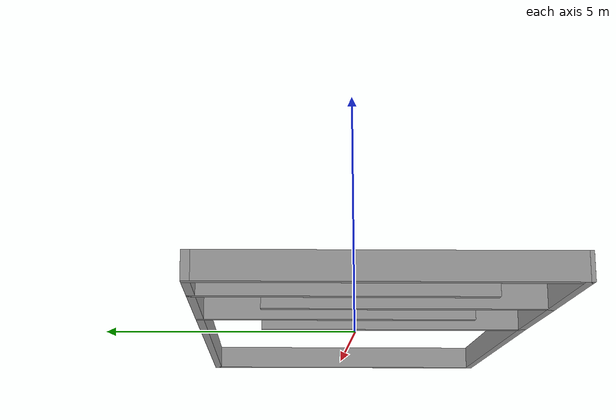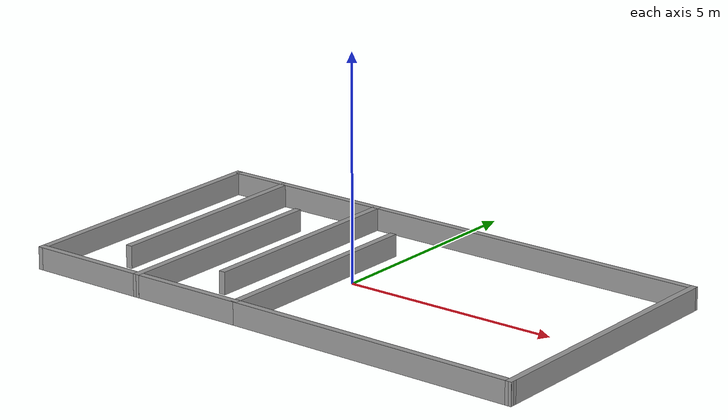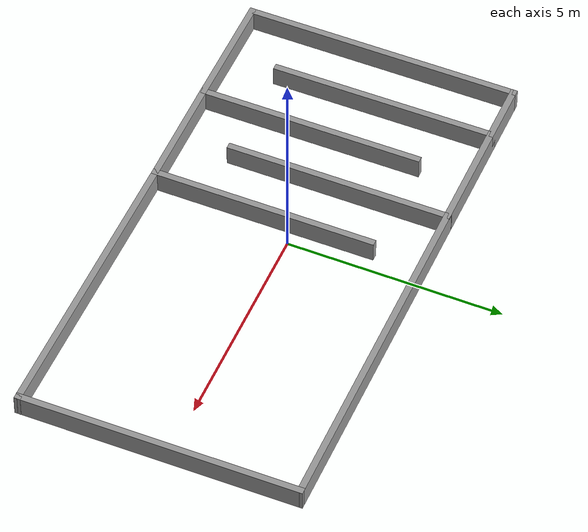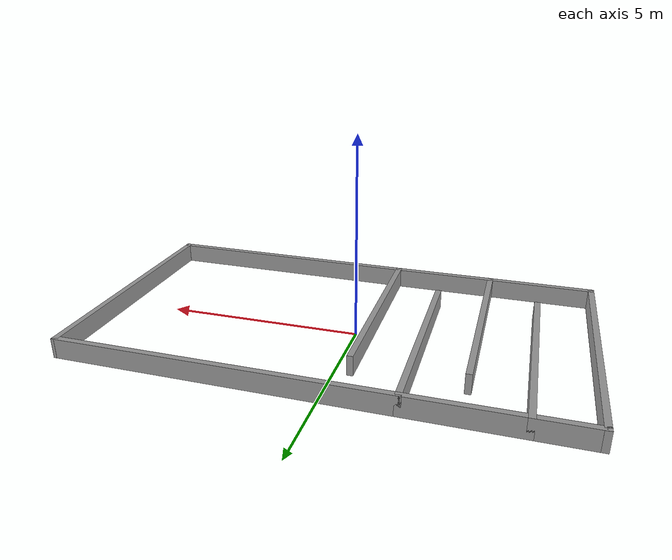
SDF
<?xml version='1.0'?>
<sdf version='1.7'>
  <model name='zigzag_limo'>
    <pose>0.405148 -0.1645 0 0 -0 0</pose>
    <link name='Wall_11'>
      <collision name='Wall_11_Collision'>
        <geometry>
          <box>
            <size>5.25 0.15 0.5</size>
          </box>
        </geometry>
        <pose>0 0 0.25 0 -0 0</pose>
      </collision>
      <visual name='Wall_11_Visual'>
        <pose>0 0 0.25 0 -0 0</pose>
        <geometry>
          <box>
            <size>5.25 0.15 0.5</size>
          </box>
        </geometry>
        <material>
          <script>
            <uri>file://media/materials/scripts/gazebo.material</uri>
            <name>Gazebo/Grey</name>
          </script>
          <ambient>1 1 1 1</ambient>
        </material>
        <meta>
          <layer>0</layer>
        </meta>
      </visual>
      <pose>-3.38515 -0.5795 0 0 -0 1.5708</pose>
    </link>
    <link name='Wall_14'>
      <collision name='Wall_14_Collision'>
        <geometry>
          <box>
            <size>2.72786 0.15 0.5</size>
          </box>
        </geometry>
        <pose>0 0 0.25 0 -0 0</pose>
      </collision>
      <visual name='Wall_14_Visual'>
        <pose>0 0 0.25 0 -0 0</pose>
        <geometry>
          <box>
            <size>2.72786 0.15 0.5</size>
          </box>
        </geometry>
        <material>
          <script>
            <uri>file://media/materials/scripts/gazebo.material</uri>
            <name>Gazebo/Grey</name>
          </script>
          <ambient>1 1 1 1</ambient>
        </material>
        <meta>
          <layer>0</layer>
        </meta>
      </visual>
      <pose>-3.40465 3.1925 0 0 -0 0</pose>
    </link>
    <link name='Wall_20'>
      <collision name='Wall_20_Collision'>
        <geometry>
          <box>
            <size>5.25 0.15 0.5</size>
          </box>
        </geometry>
        <pose>0 0 0.25 0 -0 0</pose>
      </collision>
      <visual name='Wall_20_Visual'>
        <pose>0 0 0.25 0 -0 0</pose>
        <geometry>
          <box>
            <size>5.25 0.15 0.5</size>
          </box>
        </geometry>
        <material>
          <script>
            <uri>file://media/materials/scripts/gazebo.material</uri>
            <name>Gazebo/Grey</name>
          </script>
          <ambient>1 1 1 1</ambient>
        </material>
        <meta>
          <layer>0</layer>
        </meta>
      </visual>
      <pose>-2.11615 0.6425 0 0 -0 -1.5708</pose>
    </link>
    <link name='Wall_22'>
      <collision name='Wall_22_Collision'>
        <geometry>
          <box>
            <size>2.75 0.15 0.5</size>
          </box>
        </geometry>
        <pose>0 0 0.25 0 -0 0</pose>
      </collision>
      <visual name='Wall_22_Visual'>
        <pose>0 0 0.25 0 -0 0</pose>
        <geometry>
          <box>
            <size>2.75 0.15 0.5</size>
          </box>
        </geometry>
        <material>
          <script>
            <uri>file://media/materials/scripts/gazebo.material</uri>
            <name>Gazebo/Grey</name>
          </script>
          <ambient>1 1 1 1</ambient>
        </material>
        <meta>
          <layer>0</layer>
        </meta>
      </visual>
      <pose>-2.08515 -3.1295 0 0 -0 0</pose>
    </link>
    <link name='Wall_23'>
      <collision name='Wall_23_Collision'>
        <geometry>
          <box>
            <size>5.25 0.15 0.5</size>
          </box>
        </geometry>
        <pose>0 0 0.25 0 -0 0</pose>
      </collision>
      <visual name='Wall_23_Visual'>
        <pose>0 0 0.25 0 -0 0</pose>
        <geometry>
          <box>
            <size>5.25 0.15 0.5</size>
          </box>
        </geometry>
        <material>
          <script>
            <uri>file://media/materials/scripts/gazebo.material</uri>
            <name>Gazebo/Grey</name>
          </script>
          <ambient>1 1 1 1</ambient>
        </material>
        <meta>
          <layer>0</layer>
        </meta>
      </visual>
      <pose>-0.785148 -0.5795 0 0 -0 1.5708</pose>
    </link>
    <link name='Wall_25'>
      <collision name='Wall_25_Collision'>
        <geometry>
          <box>
            <size>8.25 0.15 0.5</size>
          </box>
        </geometry>
        <pose>0 0 0.25 0 -0 0</pose>
      </collision>
      <visual name='Wall_25_Visual'>
        <pose>0 0 0.25 0 -0 0</pose>
        <geometry>
          <box>
            <size>8.25 0.15 0.5</size>
          </box>
        </geometry>
        <material>
          <script>
            <uri>file://media/materials/scripts/gazebo.material</uri>
            <name>Gazebo/Grey</name>
          </script>
          <ambient>1 1 1 1</ambient>
        </material>
        <meta>
          <layer>0</layer>
        </meta>
      </visual>
      <pose>1.93385 3.1925 0 0 -0 0</pose>
    </link>
    <link name='Wall_26'>
      <collision name='Wall_26_Collision'>
        <geometry>
          <box>
            <size>6.53534 0.15 0.5</size>
          </box>
        </geometry>
        <pose>0 0 0.25 0 -0 0</pose>
      </collision>
      <visual name='Wall_26_Visual'>
        <pose>0 0 0.25 0 -0 0</pose>
        <geometry>
          <box>
            <size>6.53534 0.15 0.5</size>
          </box>
        </geometry>
        <material>
          <script>
            <uri>file://media/materials/scripts/gazebo.material</uri>
            <name>Gazebo/Grey</name>
          </script>
          <ambient>1 1 1 1</ambient>
        </material>
        <meta>
          <layer>0</layer>
        </meta>
      </visual>
      <pose>6.01335 0 0 0 -0 -1.56156</pose>
    </link>
    <link name='Wall_27'>
      <collision name='Wall_27_Collision'>
        <geometry>
          <box>
            <size>6.97829 0.15 0.5</size>
          </box>
        </geometry>
        <pose>0 0 0.25 0 -0 0</pose>
      </collision>
      <visual name='Wall_27_Visual'>
        <pose>0 0 0.25 0 -0 0</pose>
        <geometry>
          <box>
            <size>6.97829 0.15 0.5</size>
          </box>
        </geometry>
        <material>
          <script>
            <uri>file://media/materials/scripts/gazebo.material</uri>
            <name>Gazebo/Grey</name>
          </script>
          <ambient>1 1 1 1</ambient>
        </material>
        <meta>
          <layer>0</layer>
        </meta>
      </visual>
      <pose>2.62885 -3.161 0 0 -0 3.13237</pose>
    </link>
    <link name='Wall_5'>
      <collision name='Wall_5_Collision'>
        <geometry>
          <box>
            <size>6.45833 0.15 0.5</size>
          </box>
        </geometry>
        <pose>0 0 0.25 0 -0 0</pose>
      </collision>
      <visual name='Wall_5_Visual'>
        <pose>0 0 0.25 0 -0 0</pose>
        <geometry>
          <box>
            <size>6.45833 0.15 0.5</size>
          </box>
        </geometry>
        <material>
          <script>
            <uri>file://media/materials/scripts/gazebo.material</uri>
            <name>Gazebo/Grey</name>
          </script>
          <ambient>1 1 1 1</ambient>
        </material>
        <meta>
          <layer>0</layer>
        </meta>
      </visual>
      <pose>-6.04315 0.0385 0 0 -0 -1.5708</pose>
    </link>
    <link name='Wall_6'>
      <collision name='Wall_6_Collision'>
        <geometry>
          <box>
            <size>2.80804 0.15 0.5</size>
          </box>
        </geometry>
        <pose>0 0 0.25 0 -0 0</pose>
      </collision>
      <visual name='Wall_6_Visual'>
        <pose>0 0 0.25 0 -0 0</pose>
        <geometry>
          <box>
            <size>2.80804 0.15 0.5</size>
          </box>
        </geometry>
        <material>
          <script>
            <uri>file://media/materials/scripts/gazebo.material</uri>
            <name>Gazebo/Grey</name>
          </script>
          <ambient>1 1 1 1</ambient>
        </material>
        <meta>
          <layer>0</layer>
        </meta>
      </visual>
      <pose>-4.71415 -3.1225 0 0 -0 -0.005267</pose>
    </link>
    <link name='Wall_8'>
      <collision name='Wall_8_Collision'>
        <geometry>
          <box>
            <size>1.5 0.15 0.5</size>
          </box>
        </geometry>
        <pose>0 0 0.25 0 -0 0</pose>
      </collision>
      <visual name='Wall_8_Visual'>
        <pose>0 0 0.25 0 -0 0</pose>
        <geometry>
          <box>
            <size>1.5 0.15 0.5</size>
          </box>
        </geometry>
        <material>
          <script>
            <uri>file://media/materials/scripts/gazebo.material</uri>
            <name>Gazebo/Grey</name>
          </script>
          <ambient>1 1 1 1</ambient>
        </material>
        <meta>
          <layer>0</layer>
        </meta>
      </visual>
      <pose>-5.36815 3.1925 0 0 -0 0</pose>
    </link>
    <link name='Wall_9'>
      <collision name='Wall_9_Collision'>
        <geometry>
          <box>
            <size>5.24162 0.15 0.5</size>
          </box>
        </geometry>
        <pose>0 0 0.25 0 -0 0</pose>
      </collision>
      <visual name='Wall_9_Visual'>
        <pose>0 0 0.25 0 -0 0</pose>
        <geometry>
          <box>
            <size>5.24162 0.15 0.5</size>
          </box>
        </geometry>
        <material>
          <script>
            <uri>file://media/materials/scripts/gazebo.material</uri>
            <name>Gazebo/Grey</name>
          </script>
          <ambient>1 1 1 1</ambient>
        </material>
        <meta>
          <layer>0</layer>
        </meta>
      </visual>
      <pose>-4.68715 0.6465 0 0 -0 -1.56844</pose>
    </link>
    <static>1</static>
  </model>
</sdf>
